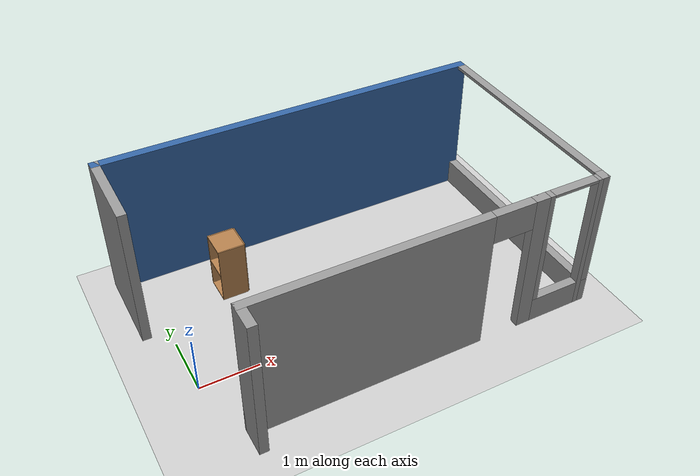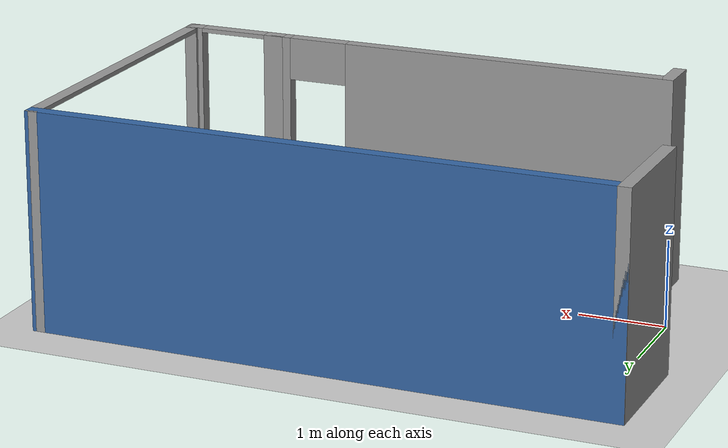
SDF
<sdf version="1.7">
 <world name="default">
  <model name="ground_plane">
   <static>1</static>
   <link name="link">
    <collision name="collision">
     <geometry><plane><normal>0 0 1</normal><size>100 100</size></plane></geometry>
     <surface>
      <contact><collide_bitmask>65535</collide_bitmask></contact>
      <friction><ode><mu>100</mu><mu2>50</mu2></ode></friction>
     </surface>
    </collision>
    <visual name="visual">
     <cast_shadows>0</cast_shadows>
     <geometry><plane><normal>0 0 1</normal><size>100 100</size></plane></geometry>
     <material>
      <script><uri>file://media/materials/scripts/gazebo.material</uri><name>Gazebo/Grey</name></script>
     </material>
    </visual>
   </link>
  </model>
  <model name="Myhouse">
   <link name="Wall_0">
    <pose>2.10158 4.8407 0 0 -0 0</pose>
    <visual name="Wall_0_Visual">
     <pose>0 0 1.25 0 -0 0</pose>
     <geometry><box><size>6.75 0.15 2.5</size></box></geometry>
     <material>
      <script><uri>file://media/materials/scripts/gazebo.material</uri><name>Gazebo/Grey</name></script>
      <ambient>0.203922 0.396078 0.643137 1</ambient>
      <shader type="pixel"/>
     </material>
     <meta><layer>0</layer></meta>
    </visual>
    <collision name="Wall_0_Collision">
     <pose>0 0 1.25 0 -0 0</pose>
     <geometry><box><size>6.75 0.15 2.5</size></box></geometry>
     <surface>
      <friction>
       <ode><mu>1</mu><mu2>1</mu2><fdir1>0 0 0</fdir1><slip1>0</slip1><slip2>0</slip2></ode>
       <torsional>
        <coefficient>1</coefficient>
        <patch_radius>0</patch_radius>
        <surface_radius>0</surface_radius>
        <use_patch_radius>1</use_patch_radius>
        <ode><slip>0</slip></ode>
       </torsional>
      </friction>
      <bounce><restitution_coefficient>0</restitution_coefficient><threshold>1e+06</threshold></bounce>
      <contact>
       <collide_without_contact>0</collide_without_contact>
       <collide_without_contact_bitmask>1</collide_without_contact_bitmask>
       <collide_bitmask>1</collide_bitmask>
       <ode>
        <soft_cfm>0</soft_cfm>
        <soft_erp>0.2</soft_erp>
        <kp>1e+13</kp>
        <kd>1</kd>
        <max_vel>0.01</max_vel>
        <min_depth>0</min_depth>
       </ode>
       <bullet>
        <split_impulse>1</split_impulse>
        <split_impulse_penetration_threshold>-0.01</split_impulse_penetration_threshold>
        <soft_cfm>0</soft_cfm>
        <soft_erp>0.2</soft_erp>
        <kp>1e+13</kp>
        <kd>1</kd>
       </bullet>
      </contact>
     </surface>
    </collision>
   </link>
   <link name="Wall_1">
    <pose>5.39997 2.92495 0 0 0 -1.57164</pose>
    <visual name="Wall_1_Visual_0">
     <pose>-1.94391 0 1.25 0 -0 0</pose>
     <geometry><box><size>0.093734 0.15 2.5</size></box></geometry>
     <material>
      <script><uri>file://media/materials/scripts/gazebo.material</uri><name>Gazebo/Grey</name></script>
      <ambient>1 1 1 1</ambient>
      <shader type="pixel"/>
     </material>
     <meta><layer>0</layer></meta>
    </visual>
    <visual name="Wall_1_Visual_1">
     <pose>0.046867 0 0.225 0 -0 0</pose>
     <geometry><box><size>3.88783 0.15 0.45</size></box></geometry>
     <material>
      <script><uri>file://media/materials/scripts/gazebo.material</uri><name>Gazebo/Grey</name></script>
      <ambient>1 1 1 1</ambient>
      <shader type="pixel"/>
     </material>
     <meta><layer>0</layer></meta>
    </visual>
    <visual name="Wall_1_Visual_2">
     <pose>1.89687 0 1.475 0 -0 0</pose>
     <geometry><box><size>0.187826 0.15 2.05</size></box></geometry>
     <material>
      <script><uri>file://media/materials/scripts/gazebo.material</uri><name>Gazebo/Grey</name></script>
      <ambient>1 1 1 1</ambient>
      <shader type="pixel"/>
     </material>
     <meta><layer>0</layer></meta>
    </visual>
    <visual name="Wall_1_Visual_3">
     <pose>-0.047046 0 2.475 0 -0 0</pose>
     <geometry><box><size>3.7 0.15 0.05</size></box></geometry>
     <material>
      <script><uri>file://media/materials/scripts/gazebo.material</uri><name>Gazebo/Grey</name></script>
      <ambient>1 1 1 1</ambient>
      <shader type="pixel"/>
     </material>
     <meta><layer>0</layer></meta>
    </visual>
    <collision name="Wall_1_Collision_0">
     <pose>-1.94391 0 1.25 0 -0 0</pose>
     <geometry><box><size>0.093734 0.15 2.5</size></box></geometry>
     <surface>
      <friction>
       <ode><mu>1</mu><mu2>1</mu2><fdir1>0 0 0</fdir1><slip1>0</slip1><slip2>0</slip2></ode>
       <torsional>
        <coefficient>1</coefficient>
        <patch_radius>0</patch_radius>
        <surface_radius>0</surface_radius>
        <use_patch_radius>1</use_patch_radius>
        <ode><slip>0</slip></ode>
       </torsional>
      </friction>
      <bounce><restitution_coefficient>0</restitution_coefficient><threshold>1e+06</threshold></bounce>
      <contact>
       <collide_without_contact>0</collide_without_contact>
       <collide_without_contact_bitmask>1</collide_without_contact_bitmask>
       <collide_bitmask>1</collide_bitmask>
       <ode>
        <soft_cfm>0</soft_cfm>
        <soft_erp>0.2</soft_erp>
        <kp>1e+13</kp>
        <kd>1</kd>
        <max_vel>0.01</max_vel>
        <min_depth>0</min_depth>
       </ode>
       <bullet>
        <split_impulse>1</split_impulse>
        <split_impulse_penetration_threshold>-0.01</split_impulse_penetration_threshold>
        <soft_cfm>0</soft_cfm>
        <soft_erp>0.2</soft_erp>
        <kp>1e+13</kp>
        <kd>1</kd>
       </bullet>
      </contact>
     </surface>
    </collision>
    <collision name="Wall_1_Collision_1">
     <pose>0.046867 0 0.225 0 -0 0</pose>
     <geometry><box><size>3.88783 0.15 0.45</size></box></geometry>
     <surface>
      <friction>
       <ode><mu>1</mu><mu2>1</mu2><fdir1>0 0 0</fdir1><slip1>0</slip1><slip2>0</slip2></ode>
       <torsional>
        <coefficient>1</coefficient>
        <patch_radius>0</patch_radius>
        <surface_radius>0</surface_radius>
        <use_patch_radius>1</use_patch_radius>
        <ode><slip>0</slip></ode>
       </torsional>
      </friction>
      <bounce><restitution_coefficient>0</restitution_coefficient><threshold>1e+06</threshold></bounce>
      <contact>
       <collide_without_contact>0</collide_without_contact>
       <collide_without_contact_bitmask>1</collide_without_contact_bitmask>
       <collide_bitmask>1</collide_bitmask>
       <ode>
        <soft_cfm>0</soft_cfm>
        <soft_erp>0.2</soft_erp>
        <kp>1e+13</kp>
        <kd>1</kd>
        <max_vel>0.01</max_vel>
        <min_depth>0</min_depth>
       </ode>
       <bullet>
        <split_impulse>1</split_impulse>
        <split_impulse_penetration_threshold>-0.01</split_impulse_penetration_threshold>
        <soft_cfm>0</soft_cfm>
        <soft_erp>0.2</soft_erp>
        <kp>1e+13</kp>
        <kd>1</kd>
       </bullet>
      </contact>
     </surface>
    </collision>
    <collision name="Wall_1_Collision_2">
     <pose>1.89687 0 1.475 0 -0 0</pose>
     <geometry><box><size>0.187826 0.15 2.05</size></box></geometry>
     <surface>
      <friction>
       <ode><mu>1</mu><mu2>1</mu2><fdir1>0 0 0</fdir1><slip1>0</slip1><slip2>0</slip2></ode>
       <torsional>
        <coefficient>1</coefficient>
        <patch_radius>0</patch_radius>
        <surface_radius>0</surface_radius>
        <use_patch_radius>1</use_patch_radius>
        <ode><slip>0</slip></ode>
       </torsional>
      </friction>
      <bounce><restitution_coefficient>0</restitution_coefficient><threshold>1e+06</threshold></bounce>
      <contact>
       <collide_without_contact>0</collide_without_contact>
       <collide_without_contact_bitmask>1</collide_without_contact_bitmask>
       <collide_bitmask>1</collide_bitmask>
       <ode>
        <soft_cfm>0</soft_cfm>
        <soft_erp>0.2</soft_erp>
        <kp>1e+13</kp>
        <kd>1</kd>
        <max_vel>0.01</max_vel>
        <min_depth>0</min_depth>
       </ode>
       <bullet>
        <split_impulse>1</split_impulse>
        <split_impulse_penetration_threshold>-0.01</split_impulse_penetration_threshold>
        <soft_cfm>0</soft_cfm>
        <soft_erp>0.2</soft_erp>
        <kp>1e+13</kp>
        <kd>1</kd>
       </bullet>
      </contact>
     </surface>
    </collision>
    <collision name="Wall_1_Collision_3">
     <pose>-0.047046 0 2.475 0 -0 0</pose>
     <geometry><box><size>3.7 0.15 0.05</size></box></geometry>
     <surface>
      <friction>
       <ode><mu>1</mu><mu2>1</mu2><fdir1>0 0 0</fdir1><slip1>0</slip1><slip2>0</slip2></ode>
       <torsional>
        <coefficient>1</coefficient>
        <patch_radius>0</patch_radius>
        <surface_radius>0</surface_radius>
        <use_patch_radius>1</use_patch_radius>
        <ode><slip>0</slip></ode>
       </torsional>
      </friction>
      <bounce><restitution_coefficient>0</restitution_coefficient><threshold>1e+06</threshold></bounce>
      <contact>
       <collide_without_contact>0</collide_without_contact>
       <collide_without_contact_bitmask>1</collide_without_contact_bitmask>
       <collide_bitmask>1</collide_bitmask>
       <ode>
        <soft_cfm>0</soft_cfm>
        <soft_erp>0.2</soft_erp>
        <kp>1e+13</kp>
        <kd>1</kd>
        <max_vel>0.01</max_vel>
        <min_depth>0</min_depth>
       </ode>
       <bullet>
        <split_impulse>1</split_impulse>
        <split_impulse_penetration_threshold>-0.01</split_impulse_penetration_threshold>
        <soft_cfm>0</soft_cfm>
        <soft_erp>0.2</soft_erp>
        <kp>1e+13</kp>
        <kd>1</kd>
       </bullet>
      </contact>
     </surface>
    </collision>
   </link>
   <link name="Wall_13">
    <pose>1.92675 1.00921 0 0 -0 3.14159</pose>
    <visual name="Wall_13_Visual_0">
     <pose>-2.32196 0 1.25 0 -0 0</pose>
     <geometry><box><size>0.249291 0.15 2.5</size></box></geometry>
     <material>
      <script><uri>file://media/materials/scripts/gazebo.material</uri><name>Gazebo/Grey</name></script>
      <ambient>1 1 1 1</ambient>
      <shader type="pixel"/>
     </material>
     <meta><layer>0</layer></meta>
    </visual>
    <visual name="Wall_13_Visual_1">
     <pose>0.474646 0 1.25 0 -0 0</pose>
     <geometry><box><size>3.94392 0.15 2.5</size></box></geometry>
     <material>
      <script><uri>file://media/materials/scripts/gazebo.material</uri><name>Gazebo/Grey</name></script>
      <ambient>1 1 1 1</ambient>
      <shader type="pixel"/>
     </material>
     <meta><layer>0</layer></meta>
    </visual>
    <visual name="Wall_13_Visual_2">
     <pose>-1.84732 0 2.25 0 -0 0</pose>
     <geometry><box><size>0.7 0.15 0.5</size></box></geometry>
     <material>
      <script><uri>file://media/materials/scripts/gazebo.material</uri><name>Gazebo/Grey</name></script>
      <ambient>1 1 1 1</ambient>
      <shader type="pixel"/>
     </material>
     <meta><layer>0</layer></meta>
    </visual>
    <collision name="Wall_13_Collision_0">
     <pose>-2.32196 0 1.25 0 -0 0</pose>
     <geometry><box><size>0.249291 0.15 2.5</size></box></geometry>
     <surface>
      <friction>
       <ode><mu>1</mu><mu2>1</mu2><fdir1>0 0 0</fdir1><slip1>0</slip1><slip2>0</slip2></ode>
       <torsional>
        <coefficient>1</coefficient>
        <patch_radius>0</patch_radius>
        <surface_radius>0</surface_radius>
        <use_patch_radius>1</use_patch_radius>
        <ode><slip>0</slip></ode>
       </torsional>
      </friction>
      <bounce><restitution_coefficient>0</restitution_coefficient><threshold>1e+06</threshold></bounce>
      <contact>
       <collide_without_contact>0</collide_without_contact>
       <collide_without_contact_bitmask>1</collide_without_contact_bitmask>
       <collide_bitmask>1</collide_bitmask>
       <ode>
        <soft_cfm>0</soft_cfm>
        <soft_erp>0.2</soft_erp>
        <kp>1e+13</kp>
        <kd>1</kd>
        <max_vel>0.01</max_vel>
        <min_depth>0</min_depth>
       </ode>
       <bullet>
        <split_impulse>1</split_impulse>
        <split_impulse_penetration_threshold>-0.01</split_impulse_penetration_threshold>
        <soft_cfm>0</soft_cfm>
        <soft_erp>0.2</soft_erp>
        <kp>1e+13</kp>
        <kd>1</kd>
       </bullet>
      </contact>
     </surface>
    </collision>
    <collision name="Wall_13_Collision_1">
     <pose>0.474646 0 1.25 0 -0 0</pose>
     <geometry><box><size>3.94392 0.15 2.5</size></box></geometry>
     <surface>
      <friction>
       <ode><mu>1</mu><mu2>1</mu2><fdir1>0 0 0</fdir1><slip1>0</slip1><slip2>0</slip2></ode>
       <torsional>
        <coefficient>1</coefficient>
        <patch_radius>0</patch_radius>
        <surface_radius>0</surface_radius>
        <use_patch_radius>1</use_patch_radius>
        <ode><slip>0</slip></ode>
       </torsional>
      </friction>
      <bounce><restitution_coefficient>0</restitution_coefficient><threshold>1e+06</threshold></bounce>
      <contact>
       <collide_without_contact>0</collide_without_contact>
       <collide_without_contact_bitmask>1</collide_without_contact_bitmask>
       <collide_bitmask>1</collide_bitmask>
       <ode>
        <soft_cfm>0</soft_cfm>
        <soft_erp>0.2</soft_erp>
        <kp>1e+13</kp>
        <kd>1</kd>
        <max_vel>0.01</max_vel>
        <min_depth>0</min_depth>
       </ode>
       <bullet>
        <split_impulse>1</split_impulse>
        <split_impulse_penetration_threshold>-0.01</split_impulse_penetration_threshold>
        <soft_cfm>0</soft_cfm>
        <soft_erp>0.2</soft_erp>
        <kp>1e+13</kp>
        <kd>1</kd>
       </bullet>
      </contact>
     </surface>
    </collision>
    <collision name="Wall_13_Collision_2">
     <pose>-1.84732 0 2.25 0 -0 0</pose>
     <geometry><box><size>0.7 0.15 0.5</size></box></geometry>
     <surface>
      <friction>
       <ode><mu>1</mu><mu2>1</mu2><fdir1>0 0 0</fdir1><slip1>0</slip1><slip2>0</slip2></ode>
       <torsional>
        <coefficient>1</coefficient>
        <patch_radius>0</patch_radius>
        <surface_radius>0</surface_radius>
        <use_patch_radius>1</use_patch_radius>
        <ode><slip>0</slip></ode>
       </torsional>
      </friction>
      <bounce><restitution_coefficient>0</restitution_coefficient><threshold>1e+06</threshold></bounce>
      <contact>
       <collide_without_contact>0</collide_without_contact>
       <collide_without_contact_bitmask>1</collide_without_contact_bitmask>
       <collide_bitmask>1</collide_bitmask>
       <ode>
        <soft_cfm>0</soft_cfm>
        <soft_erp>0.2</soft_erp>
        <kp>1e+13</kp>
        <kd>1</kd>
        <max_vel>0.01</max_vel>
        <min_depth>0</min_depth>
       </ode>
       <bullet>
        <split_impulse>1</split_impulse>
        <split_impulse_penetration_threshold>-0.01</split_impulse_penetration_threshold>
        <soft_cfm>0</soft_cfm>
        <soft_erp>0.2</soft_erp>
        <kp>1e+13</kp>
        <kd>1</kd>
       </bullet>
      </contact>
     </surface>
    </collision>
   </link>
   <link name="Wall_5">
    <pose>4.84836 1.00921 0 0 -0 3.14159</pose>
    <visual name="Wall_5_Visual_0">
     <pose>-0.519773 0 1.25 0 -0 0</pose>
     <geometry><box><size>0.210454 0.15 2.5</size></box></geometry>
     <material>
      <script><uri>file://media/materials/scripts/gazebo.material</uri><name>Gazebo/Grey</name></script>
      <ambient>1 1 1 1</ambient>
      <shader type="pixel"/>
     </material>
     <meta><layer>0</layer></meta>
    </visual>
    <visual name="Wall_5_Visual_1">
     <pose>0.105227 0 0.225 0 -0 0</pose>
     <geometry><box><size>1.03955 0.15 0.45</size></box></geometry>
     <material>
      <script><uri>file://media/materials/scripts/gazebo.material</uri><name>Gazebo/Grey</name></script>
      <ambient>1 1 1 1</ambient>
      <shader type="pixel"/>
     </material>
     <meta><layer>0</layer></meta>
    </visual>
    <visual name="Wall_5_Visual_2">
     <pose>0.505227 0 1.475 0 -0 0</pose>
     <geometry><box><size>0.239546 0.15 2.05</size></box></geometry>
     <material>
      <script><uri>file://media/materials/scripts/gazebo.material</uri><name>Gazebo/Grey</name></script>
      <ambient>1 1 1 1</ambient>
      <shader type="pixel"/>
     </material>
     <meta><layer>0</layer></meta>
    </visual>
    <visual name="Wall_5_Visual_3">
     <pose>-0.014546 0 2.475 0 -0 0</pose>
     <geometry><box><size>0.8 0.15 0.05</size></box></geometry>
     <material>
      <script><uri>file://media/materials/scripts/gazebo.material</uri><name>Gazebo/Grey</name></script>
      <ambient>1 1 1 1</ambient>
      <shader type="pixel"/>
     </material>
     <meta><layer>0</layer></meta>
    </visual>
    <collision name="Wall_5_Collision_0">
     <pose>-0.519773 0 1.25 0 -0 0</pose>
     <geometry><box><size>0.210454 0.15 2.5</size></box></geometry>
     <surface>
      <friction>
       <ode><mu>1</mu><mu2>1</mu2><fdir1>0 0 0</fdir1><slip1>0</slip1><slip2>0</slip2></ode>
       <torsional>
        <coefficient>1</coefficient>
        <patch_radius>0</patch_radius>
        <surface_radius>0</surface_radius>
        <use_patch_radius>1</use_patch_radius>
        <ode><slip>0</slip></ode>
       </torsional>
      </friction>
      <bounce><restitution_coefficient>0</restitution_coefficient><threshold>1e+06</threshold></bounce>
      <contact>
       <collide_without_contact>0</collide_without_contact>
       <collide_without_contact_bitmask>1</collide_without_contact_bitmask>
       <collide_bitmask>1</collide_bitmask>
       <ode>
        <soft_cfm>0</soft_cfm>
        <soft_erp>0.2</soft_erp>
        <kp>1e+13</kp>
        <kd>1</kd>
        <max_vel>0.01</max_vel>
        <min_depth>0</min_depth>
       </ode>
       <bullet>
        <split_impulse>1</split_impulse>
        <split_impulse_penetration_threshold>-0.01</split_impulse_penetration_threshold>
        <soft_cfm>0</soft_cfm>
        <soft_erp>0.2</soft_erp>
        <kp>1e+13</kp>
        <kd>1</kd>
       </bullet>
      </contact>
     </surface>
    </collision>
    <collision name="Wall_5_Collision_2">
     <pose>0.505227 0 1.475 0 -0 0</pose>
     <geometry><box><size>0.239546 0.15 2.05</size></box></geometry>
     <surface>
      <friction>
       <ode><mu>1</mu><mu2>1</mu2><fdir1>0 0 0</fdir1><slip1>0</slip1><slip2>0</slip2></ode>
       <torsional>
        <coefficient>1</coefficient>
        <patch_radius>0</patch_radius>
        <surface_radius>0</surface_radius>
        <use_patch_radius>1</use_patch_radius>
        <ode><slip>0</slip></ode>
       </torsional>
      </friction>
      <bounce><restitution_coefficient>0</restitution_coefficient><threshold>1e+06</threshold></bounce>
      <contact>
       <collide_without_contact>0</collide_without_contact>
       <collide_without_contact_bitmask>1</collide_without_contact_bitmask>
       <collide_bitmask>1</collide_bitmask>
       <ode>
        <soft_cfm>0</soft_cfm>
        <soft_erp>0.2</soft_erp>
        <kp>1e+13</kp>
        <kd>1</kd>
        <max_vel>0.01</max_vel>
        <min_depth>0</min_depth>
       </ode>
       <bullet>
        <split_impulse>1</split_impulse>
        <split_impulse_penetration_threshold>-0.01</split_impulse_penetration_threshold>
        <soft_cfm>0</soft_cfm>
        <soft_erp>0.2</soft_erp>
        <kp>1e+13</kp>
        <kd>1</kd>
       </bullet>
      </contact>
     </surface>
    </collision>
    <collision name="Wall_5_Collision_1">
     <pose>0.105227 0 0.225 0 -0 0</pose>
     <geometry><box><size>1.03955 0.15 0.45</size></box></geometry>
     <surface>
      <friction>
       <ode><mu>1</mu><mu2>1</mu2><fdir1>0 0 0</fdir1><slip1>0</slip1><slip2>0</slip2></ode>
       <torsional>
        <coefficient>1</coefficient>
        <patch_radius>0</patch_radius>
        <surface_radius>0</surface_radius>
        <use_patch_radius>1</use_patch_radius>
        <ode><slip>0</slip></ode>
       </torsional>
      </friction>
      <bounce><restitution_coefficient>0</restitution_coefficient><threshold>1e+06</threshold></bounce>
      <contact>
       <collide_without_contact>0</collide_without_contact>
       <collide_without_contact_bitmask>1</collide_without_contact_bitmask>
       <collide_bitmask>1</collide_bitmask>
       <ode>
        <soft_cfm>0</soft_cfm>
        <soft_erp>0.2</soft_erp>
        <kp>1e+13</kp>
        <kd>1</kd>
        <max_vel>0.01</max_vel>
        <min_depth>0</min_depth>
       </ode>
       <bullet>
        <split_impulse>1</split_impulse>
        <split_impulse_penetration_threshold>-0.01</split_impulse_penetration_threshold>
        <soft_cfm>0</soft_cfm>
        <soft_erp>0.2</soft_erp>
        <kp>1e+13</kp>
        <kd>1</kd>
       </bullet>
      </contact>
     </surface>
    </collision>
    <collision name="Wall_5_Collision_3">
     <pose>-0.014546 0 2.475 0 -0 0</pose>
     <geometry><box><size>0.8 0.15 0.05</size></box></geometry>
     <surface>
      <friction>
       <ode><mu>1</mu><mu2>1</mu2><fdir1>0 0 0</fdir1><slip1>0</slip1><slip2>0</slip2></ode>
       <torsional>
        <coefficient>1</coefficient>
        <patch_radius>0</patch_radius>
        <surface_radius>0</surface_radius>
        <use_patch_radius>1</use_patch_radius>
        <ode><slip>0</slip></ode>
       </torsional>
      </friction>
      <bounce><restitution_coefficient>0</restitution_coefficient><threshold>1e+06</threshold></bounce>
      <contact>
       <collide_without_contact>0</collide_without_contact>
       <collide_without_contact_bitmask>1</collide_without_contact_bitmask>
       <collide_bitmask>1</collide_bitmask>
       <ode>
        <soft_cfm>0</soft_cfm>
        <soft_erp>0.2</soft_erp>
        <kp>1e+13</kp>
        <kd>1</kd>
        <max_vel>0.01</max_vel>
        <min_depth>0</min_depth>
       </ode>
       <bullet>
        <split_impulse>1</split_impulse>
        <split_impulse_penetration_threshold>-0.01</split_impulse_penetration_threshold>
        <soft_cfm>0</soft_cfm>
        <soft_erp>0.2</soft_erp>
        <kp>1e+13</kp>
        <kd>1</kd>
       </bullet>
      </contact>
     </surface>
    </collision>
   </link>
   <link name="Wall_51">
    <pose>-1.20142 4.1752 0 0 -0 1.5708</pose>
    <visual name="Wall_51_Visual">
     <pose>0 0 1.25 0 -0 0</pose>
     <geometry><box><size>1.481 0.15 2.5</size></box></geometry>
     <material>
      <script><uri>file://media/materials/scripts/gazebo.material</uri><name>Gazebo/Grey</name></script>
      <ambient>1 1 1 1</ambient>
      <shader type="pixel"/>
     </material>
     <meta><layer>0</layer></meta>
    </visual>
    <collision name="Wall_51_Collision">
     <pose>0 0 1.25 0 -0 0</pose>
     <geometry><box><size>1.481 0.15 2.5</size></box></geometry>
     <surface>
      <friction>
       <ode><mu>1</mu><mu2>1</mu2><fdir1>0 0 0</fdir1><slip1>0</slip1><slip2>0</slip2></ode>
       <torsional>
        <coefficient>1</coefficient>
        <patch_radius>0</patch_radius>
        <surface_radius>0</surface_radius>
        <use_patch_radius>1</use_patch_radius>
        <ode><slip>0</slip></ode>
       </torsional>
      </friction>
      <bounce><restitution_coefficient>0</restitution_coefficient><threshold>1e+06</threshold></bounce>
      <contact>
       <collide_without_contact>0</collide_without_contact>
       <collide_without_contact_bitmask>1</collide_without_contact_bitmask>
       <collide_bitmask>1</collide_bitmask>
       <ode>
        <soft_cfm>0</soft_cfm>
        <soft_erp>0.2</soft_erp>
        <kp>1e+13</kp>
        <kd>1</kd>
        <max_vel>0.01</max_vel>
        <min_depth>0</min_depth>
       </ode>
       <bullet>
        <split_impulse>1</split_impulse>
        <split_impulse_penetration_threshold>-0.01</split_impulse_penetration_threshold>
        <soft_cfm>0</soft_cfm>
        <soft_erp>0.2</soft_erp>
        <kp>1e+13</kp>
        <kd>1</kd>
       </bullet>
      </contact>
     </surface>
    </collision>
   </link>
   <link name="Wall_53">
    <pose>-0.444857 0.834209 0 0 0 -1.5708</pose>
    <visual name="Wall_53_Visual">
     <pose>0 0 1.25 0 -0 0</pose>
     <geometry><box><size>0.5 0.15 2.5</size></box></geometry>
     <material>
      <script><uri>file://media/materials/scripts/gazebo.material</uri><name>Gazebo/Grey</name></script>
      <ambient>1 1 1 1</ambient>
      <shader type="pixel"/>
     </material>
     <meta><layer>0</layer></meta>
    </visual>
    <collision name="Wall_53_Collision">
     <pose>0 0 1.25 0 -0 0</pose>
     <geometry><box><size>0.5 0.15 2.5</size></box></geometry>
     <surface>
      <friction>
       <ode><mu>1</mu><mu2>1</mu2><fdir1>0 0 0</fdir1><slip1>0</slip1><slip2>0</slip2></ode>
       <torsional>
        <coefficient>1</coefficient>
        <patch_radius>0</patch_radius>
        <surface_radius>0</surface_radius>
        <use_patch_radius>1</use_patch_radius>
        <ode><slip>0</slip></ode>
       </torsional>
      </friction>
      <bounce><restitution_coefficient>0</restitution_coefficient><threshold>1e+06</threshold></bounce>
      <contact>
       <collide_without_contact>0</collide_without_contact>
       <collide_without_contact_bitmask>1</collide_without_contact_bitmask>
       <collide_bitmask>1</collide_bitmask>
       <ode>
        <soft_cfm>0</soft_cfm>
        <soft_erp>0.2</soft_erp>
        <kp>1e+13</kp>
        <kd>1</kd>
        <max_vel>0.01</max_vel>
        <min_depth>0</min_depth>
       </ode>
       <bullet>
        <split_impulse>1</split_impulse>
        <split_impulse_penetration_threshold>-0.01</split_impulse_penetration_threshold>
        <soft_cfm>0</soft_cfm>
        <soft_erp>0.2</soft_erp>
        <kp>1e+13</kp>
        <kd>1</kd>
       </bullet>
      </contact>
     </surface>
    </collision>
   </link>
   <static>1</static>
   <pose>0.84061 -2.10852 0 0 -0 0</pose>
  </model>
  <model name="cabinet_clone">
   <link name="cabinet_bottom_plate">
    <inertial>
     <pose>0 0 -1 0 -0 0</pose>
     <inertia><ixx>2.05</ixx><ixy>0</ixy><ixz>0</ixz><iyy>2.05</iyy><iyz>0</iyz><izz>2.05</izz></inertia>
     <mass>25</mass>
    </inertial>
    <visual name="cabinet_bottom_plate_geom_cabinet_middle_plate_visual">
     <pose>0 0 0.51 0 -0 0</pose>
     <geometry><box><size>0.45 0.45 0.02</size></box></geometry>
     <material>
      <script><uri>file://media/materials/scripts/gazebo.material</uri><name>Gazebo/Wood</name></script>
      <shader type="pixel"/>
     </material>
    </visual>
    <visual name="cabinet_bottom_plate_geom_visual">
     <pose>0 0 0.01 0 -0 0</pose>
     <geometry><box><size>0.45 0.45 0.02</size></box></geometry>
     <material>
      <script><uri>file://media/materials/scripts/gazebo.material</uri><name>Gazebo/Wood</name></script>
      <shader type="pixel"/>
     </material>
    </visual>
    <visual name="cabinet_bottom_plate_geom_cabinet_right_plate_visual">
     <pose>0 -0.235 0.51 0 -0 0</pose>
     <geometry><box><size>0.45 0.02 1.02</size></box></geometry>
     <material>
      <script><uri>file://media/materials/scripts/gazebo.material</uri><name>Gazebo/Wood</name></script>
      <shader type="pixel"/>
     </material>
    </visual>
    <visual name="cabinet_bottom_plate_geom_cabinet_top_plate_visual">
     <pose>0 0 1.01 0 -0 0</pose>
     <geometry><box><size>0.45 0.45 0.02</size></box></geometry>
     <material>
      <script><uri>file://media/materials/scripts/gazebo.material</uri><name>Gazebo/Wood</name></script>
      <shader type="pixel"/>
     </material>
    </visual>
    <visual name="cabinet_bottom_plate_geom_cabinet_left_plate_visual">
     <pose>0 0.235 0.51 0 -0 0</pose>
     <geometry><box><size>0.45 0.02 1.02</size></box></geometry>
     <material>
      <script><uri>file://media/materials/scripts/gazebo.material</uri><name>Gazebo/Wood</name></script>
      <shader type="pixel"/>
     </material>
    </visual>
    <visual name="cabinet_bottom_plate_geom_cabinet_back_plate_visual">
     <pose>0.235 0 0.51 0 -0 0</pose>
     <geometry><box><size>0.02 0.45 1.02</size></box></geometry>
     <material>
      <script><uri>file://media/materials/scripts/gazebo.material</uri><name>Gazebo/Wood</name></script>
      <shader type="pixel"/>
     </material>
    </visual>
    <collision name="cabinet_bottom_plate_geom_cabinet_top_plate">
     <pose>0 0 1.01 0 -0 0</pose>
     <geometry><box><size>0.45 0.45 0.02</size></box></geometry>
     <surface>
      <friction>
       <ode><mu>1</mu><mu2>1</mu2><fdir1>0 0 0</fdir1><slip1>0</slip1><slip2>0</slip2></ode>
       <torsional>
        <coefficient>1</coefficient>
        <patch_radius>0</patch_radius>
        <surface_radius>0</surface_radius>
        <use_patch_radius>1</use_patch_radius>
        <ode><slip>0</slip></ode>
       </torsional>
      </friction>
      <bounce><restitution_coefficient>0</restitution_coefficient><threshold>1e+06</threshold></bounce>
      <contact>
       <collide_without_contact>0</collide_without_contact>
       <collide_without_contact_bitmask>1</collide_without_contact_bitmask>
       <collide_bitmask>1</collide_bitmask>
       <ode>
        <soft_cfm>0</soft_cfm>
        <soft_erp>0.2</soft_erp>
        <kp>1e+13</kp>
        <kd>1</kd>
        <max_vel>0.01</max_vel>
        <min_depth>0</min_depth>
       </ode>
       <bullet>
        <split_impulse>1</split_impulse>
        <split_impulse_penetration_threshold>-0.01</split_impulse_penetration_threshold>
        <soft_cfm>0</soft_cfm>
        <soft_erp>0.2</soft_erp>
        <kp>1e+13</kp>
        <kd>1</kd>
       </bullet>
      </contact>
     </surface>
    </collision>
    <collision name="cabinet_bottom_plate_geom">
     <pose>0 0 0.01 0 -0 0</pose>
     <geometry><box><size>0.45 0.45 0.02</size></box></geometry>
     <surface>
      <friction>
       <ode><mu>1</mu><mu2>1</mu2><fdir1>0 0 0</fdir1><slip1>0</slip1><slip2>0</slip2></ode>
       <torsional>
        <coefficient>1</coefficient>
        <patch_radius>0</patch_radius>
        <surface_radius>0</surface_radius>
        <use_patch_radius>1</use_patch_radius>
        <ode><slip>0</slip></ode>
       </torsional>
      </friction>
      <bounce><restitution_coefficient>0</restitution_coefficient><threshold>1e+06</threshold></bounce>
      <contact>
       <collide_without_contact>0</collide_without_contact>
       <collide_without_contact_bitmask>1</collide_without_contact_bitmask>
       <collide_bitmask>1</collide_bitmask>
       <ode>
        <soft_cfm>0</soft_cfm>
        <soft_erp>0.2</soft_erp>
        <kp>1e+13</kp>
        <kd>1</kd>
        <max_vel>0.01</max_vel>
        <min_depth>0</min_depth>
       </ode>
       <bullet>
        <split_impulse>1</split_impulse>
        <split_impulse_penetration_threshold>-0.01</split_impulse_penetration_threshold>
        <soft_cfm>0</soft_cfm>
        <soft_erp>0.2</soft_erp>
        <kp>1e+13</kp>
        <kd>1</kd>
       </bullet>
      </contact>
     </surface>
    </collision>
    <collision name="cabinet_bottom_plate_geom_cabinet_middle_plate">
     <pose>0 0 0.51 0 -0 0</pose>
     <geometry><box><size>0.45 0.45 0.02</size></box></geometry>
     <surface>
      <friction>
       <ode><mu>1</mu><mu2>1</mu2><fdir1>0 0 0</fdir1><slip1>0</slip1><slip2>0</slip2></ode>
       <torsional>
        <coefficient>1</coefficient>
        <patch_radius>0</patch_radius>
        <surface_radius>0</surface_radius>
        <use_patch_radius>1</use_patch_radius>
        <ode><slip>0</slip></ode>
       </torsional>
      </friction>
      <bounce><restitution_coefficient>0</restitution_coefficient><threshold>1e+06</threshold></bounce>
      <contact>
       <collide_without_contact>0</collide_without_contact>
       <collide_without_contact_bitmask>1</collide_without_contact_bitmask>
       <collide_bitmask>1</collide_bitmask>
       <ode>
        <soft_cfm>0</soft_cfm>
        <soft_erp>0.2</soft_erp>
        <kp>1e+13</kp>
        <kd>1</kd>
        <max_vel>0.01</max_vel>
        <min_depth>0</min_depth>
       </ode>
       <bullet>
        <split_impulse>1</split_impulse>
        <split_impulse_penetration_threshold>-0.01</split_impulse_penetration_threshold>
        <soft_cfm>0</soft_cfm>
        <soft_erp>0.2</soft_erp>
        <kp>1e+13</kp>
        <kd>1</kd>
       </bullet>
      </contact>
     </surface>
    </collision>
    <collision name="cabinet_bottom_plate_geom_cabinet_right_plate">
     <pose>0 -0.235 0.51 0 -0 0</pose>
     <geometry><box><size>0.45 0.02 1.02</size></box></geometry>
     <surface>
      <friction>
       <ode><mu>1</mu><mu2>1</mu2><fdir1>0 0 0</fdir1><slip1>0</slip1><slip2>0</slip2></ode>
       <torsional>
        <coefficient>1</coefficient>
        <patch_radius>0</patch_radius>
        <surface_radius>0</surface_radius>
        <use_patch_radius>1</use_patch_radius>
        <ode><slip>0</slip></ode>
       </torsional>
      </friction>
      <bounce><restitution_coefficient>0</restitution_coefficient><threshold>1e+06</threshold></bounce>
      <contact>
       <collide_without_contact>0</collide_without_contact>
       <collide_without_contact_bitmask>1</collide_without_contact_bitmask>
       <collide_bitmask>1</collide_bitmask>
       <ode>
        <soft_cfm>0</soft_cfm>
        <soft_erp>0.2</soft_erp>
        <kp>1e+13</kp>
        <kd>1</kd>
        <max_vel>0.01</max_vel>
        <min_depth>0</min_depth>
       </ode>
       <bullet>
        <split_impulse>1</split_impulse>
        <split_impulse_penetration_threshold>-0.01</split_impulse_penetration_threshold>
        <soft_cfm>0</soft_cfm>
        <soft_erp>0.2</soft_erp>
        <kp>1e+13</kp>
        <kd>1</kd>
       </bullet>
      </contact>
     </surface>
    </collision>
    <collision name="cabinet_bottom_plate_geom_cabinet_left_plate">
     <pose>0 0.235 0.51 0 -0 0</pose>
     <geometry><box><size>0.45 0.02 1.02</size></box></geometry>
     <surface>
      <friction>
       <ode><mu>1</mu><mu2>1</mu2><fdir1>0 0 0</fdir1><slip1>0</slip1><slip2>0</slip2></ode>
       <torsional>
        <coefficient>1</coefficient>
        <patch_radius>0</patch_radius>
        <surface_radius>0</surface_radius>
        <use_patch_radius>1</use_patch_radius>
        <ode><slip>0</slip></ode>
       </torsional>
      </friction>
      <bounce><restitution_coefficient>0</restitution_coefficient><threshold>1e+06</threshold></bounce>
      <contact>
       <collide_without_contact>0</collide_without_contact>
       <collide_without_contact_bitmask>1</collide_without_contact_bitmask>
       <collide_bitmask>1</collide_bitmask>
       <ode>
        <soft_cfm>0</soft_cfm>
        <soft_erp>0.2</soft_erp>
        <kp>1e+13</kp>
        <kd>1</kd>
        <max_vel>0.01</max_vel>
        <min_depth>0</min_depth>
       </ode>
       <bullet>
        <split_impulse>1</split_impulse>
        <split_impulse_penetration_threshold>-0.01</split_impulse_penetration_threshold>
        <soft_cfm>0</soft_cfm>
        <soft_erp>0.2</soft_erp>
        <kp>1e+13</kp>
        <kd>1</kd>
       </bullet>
      </contact>
     </surface>
    </collision>
    <collision name="cabinet_bottom_plate_geom_cabinet_back_plate">
     <pose>0.235 0 0.51 0 -0 0</pose>
     <geometry><box><size>0.02 0.45 1.02</size></box></geometry>
     <surface>
      <friction>
       <ode><mu>1</mu><mu2>1</mu2><fdir1>0 0 0</fdir1><slip1>0</slip1><slip2>0</slip2></ode>
       <torsional>
        <coefficient>1</coefficient>
        <patch_radius>0</patch_radius>
        <surface_radius>0</surface_radius>
        <use_patch_radius>1</use_patch_radius>
        <ode><slip>0</slip></ode>
       </torsional>
      </friction>
      <bounce><restitution_coefficient>0</restitution_coefficient><threshold>1e+06</threshold></bounce>
      <contact>
       <collide_without_contact>0</collide_without_contact>
       <collide_without_contact_bitmask>1</collide_without_contact_bitmask>
       <collide_bitmask>1</collide_bitmask>
       <ode>
        <soft_cfm>0</soft_cfm>
        <soft_erp>0.2</soft_erp>
        <kp>1e+13</kp>
        <kd>1</kd>
        <max_vel>0.01</max_vel>
        <min_depth>0</min_depth>
       </ode>
       <bullet>
        <split_impulse>1</split_impulse>
        <split_impulse_penetration_threshold>-0.01</split_impulse_penetration_threshold>
        <soft_cfm>0</soft_cfm>
        <soft_erp>0.2</soft_erp>
        <kp>1e+13</kp>
        <kd>1</kd>
       </bullet>
      </contact>
     </surface>
    </collision>
   </link>
   <static>1</static>
   <pose>1.26836 1.83757 0 0 -0 0</pose>
  </model>
  <model name="cabinet_clone_0">
   <link name="cabinet_bottom_plate">
    <inertial>
     <pose>0 0 -1 0 -0 0</pose>
     <inertia><ixx>2.05</ixx><ixy>0</ixy><ixz>0</ixz><iyy>2.05</iyy><iyz>0</iyz><izz>2.05</izz></inertia>
     <mass>25</mass>
    </inertial>
    <visual name="cabinet_bottom_plate_geom_cabinet_middle_plate_visual">
     <pose>0 0 0.51 0 -0 0</pose>
     <geometry><box><size>0.45 0.45 0.02</size></box></geometry>
     <material>
      <script><uri>file://media/materials/scripts/gazebo.material</uri><name>Gazebo/Wood</name></script>
      <shader type="pixel"/>
     </material>
    </visual>
    <visual name="cabinet_bottom_plate_geom_visual">
     <pose>0 0 0.01 0 -0 0</pose>
     <geometry><box><size>0.45 0.45 0.02</size></box></geometry>
     <material>
      <script><uri>file://media/materials/scripts/gazebo.material</uri><name>Gazebo/Wood</name></script>
      <shader type="pixel"/>
     </material>
    </visual>
    <visual name="cabinet_bottom_plate_geom_cabinet_right_plate_visual">
     <pose>0 -0.235 0.51 0 -0 0</pose>
     <geometry><box><size>0.45 0.02 1.02</size></box></geometry>
     <material>
      <script><uri>file://media/materials/scripts/gazebo.material</uri><name>Gazebo/Wood</name></script>
      <shader type="pixel"/>
     </material>
    </visual>
    <visual name="cabinet_bottom_plate_geom_cabinet_top_plate_visual">
     <pose>0 0 1.01 0 -0 0</pose>
     <geometry><box><size>0.45 0.45 0.02</size></box></geometry>
     <material>
      <script><uri>file://media/materials/scripts/gazebo.material</uri><name>Gazebo/Wood</name></script>
      <shader type="pixel"/>
     </material>
    </visual>
    <visual name="cabinet_bottom_plate_geom_cabinet_left_plate_visual">
     <pose>0 0.235 0.51 0 -0 0</pose>
     <geometry><box><size>0.45 0.02 1.02</size></box></geometry>
     <material>
      <script><uri>file://media/materials/scripts/gazebo.material</uri><name>Gazebo/Wood</name></script>
      <shader type="pixel"/>
     </material>
    </visual>
    <visual name="cabinet_bottom_plate_geom_cabinet_back_plate_visual">
     <pose>0.235 0 0.51 0 -0 0</pose>
     <geometry><box><size>0.02 0.45 1.02</size></box></geometry>
     <material>
      <script><uri>file://media/materials/scripts/gazebo.material</uri><name>Gazebo/Wood</name></script>
      <shader type="pixel"/>
     </material>
    </visual>
    <collision name="cabinet_bottom_plate_geom_cabinet_top_plate">
     <pose>0 0 1.01 0 -0 0</pose>
     <geometry><box><size>0.45 0.45 0.02</size></box></geometry>
     <surface>
      <friction>
       <ode><mu>1</mu><mu2>1</mu2><fdir1>0 0 0</fdir1><slip1>0</slip1><slip2>0</slip2></ode>
       <torsional>
        <coefficient>1</coefficient>
        <patch_radius>0</patch_radius>
        <surface_radius>0</surface_radius>
        <use_patch_radius>1</use_patch_radius>
        <ode><slip>0</slip></ode>
       </torsional>
      </friction>
      <bounce><restitution_coefficient>0</restitution_coefficient><threshold>1e+06</threshold></bounce>
      <contact>
       <collide_without_contact>0</collide_without_contact>
       <collide_without_contact_bitmask>1</collide_without_contact_bitmask>
       <collide_bitmask>1</collide_bitmask>
       <ode>
        <soft_cfm>0</soft_cfm>
        <soft_erp>0.2</soft_erp>
        <kp>1e+13</kp>
        <kd>1</kd>
        <max_vel>0.01</max_vel>
        <min_depth>0</min_depth>
       </ode>
       <bullet>
        <split_impulse>1</split_impulse>
        <split_impulse_penetration_threshold>-0.01</split_impulse_penetration_threshold>
        <soft_cfm>0</soft_cfm>
        <soft_erp>0.2</soft_erp>
        <kp>1e+13</kp>
        <kd>1</kd>
       </bullet>
      </contact>
     </surface>
    </collision>
    <collision name="cabinet_bottom_plate_geom">
     <pose>0 0 0.01 0 -0 0</pose>
     <geometry><box><size>0.45 0.45 0.02</size></box></geometry>
     <surface>
      <friction>
       <ode><mu>1</mu><mu2>1</mu2><fdir1>0 0 0</fdir1><slip1>0</slip1><slip2>0</slip2></ode>
       <torsional>
        <coefficient>1</coefficient>
        <patch_radius>0</patch_radius>
        <surface_radius>0</surface_radius>
        <use_patch_radius>1</use_patch_radius>
        <ode><slip>0</slip></ode>
       </torsional>
      </friction>
      <bounce><restitution_coefficient>0</restitution_coefficient><threshold>1e+06</threshold></bounce>
      <contact>
       <collide_without_contact>0</collide_without_contact>
       <collide_without_contact_bitmask>1</collide_without_contact_bitmask>
       <collide_bitmask>1</collide_bitmask>
       <ode>
        <soft_cfm>0</soft_cfm>
        <soft_erp>0.2</soft_erp>
        <kp>1e+13</kp>
        <kd>1</kd>
        <max_vel>0.01</max_vel>
        <min_depth>0</min_depth>
       </ode>
       <bullet>
        <split_impulse>1</split_impulse>
        <split_impulse_penetration_threshold>-0.01</split_impulse_penetration_threshold>
        <soft_cfm>0</soft_cfm>
        <soft_erp>0.2</soft_erp>
        <kp>1e+13</kp>
        <kd>1</kd>
       </bullet>
      </contact>
     </surface>
    </collision>
    <collision name="cabinet_bottom_plate_geom_cabinet_middle_plate">
     <pose>0 0 0.51 0 -0 0</pose>
     <geometry><box><size>0.45 0.45 0.02</size></box></geometry>
     <surface>
      <friction>
       <ode><mu>1</mu><mu2>1</mu2><fdir1>0 0 0</fdir1><slip1>0</slip1><slip2>0</slip2></ode>
       <torsional>
        <coefficient>1</coefficient>
        <patch_radius>0</patch_radius>
        <surface_radius>0</surface_radius>
        <use_patch_radius>1</use_patch_radius>
        <ode><slip>0</slip></ode>
       </torsional>
      </friction>
      <bounce><restitution_coefficient>0</restitution_coefficient><threshold>1e+06</threshold></bounce>
      <contact>
       <collide_without_contact>0</collide_without_contact>
       <collide_without_contact_bitmask>1</collide_without_contact_bitmask>
       <collide_bitmask>1</collide_bitmask>
       <ode>
        <soft_cfm>0</soft_cfm>
        <soft_erp>0.2</soft_erp>
        <kp>1e+13</kp>
        <kd>1</kd>
        <max_vel>0.01</max_vel>
        <min_depth>0</min_depth>
       </ode>
       <bullet>
        <split_impulse>1</split_impulse>
        <split_impulse_penetration_threshold>-0.01</split_impulse_penetration_threshold>
        <soft_cfm>0</soft_cfm>
        <soft_erp>0.2</soft_erp>
        <kp>1e+13</kp>
        <kd>1</kd>
       </bullet>
      </contact>
     </surface>
    </collision>
    <collision name="cabinet_bottom_plate_geom_cabinet_right_plate">
     <pose>0 -0.235 0.51 0 -0 0</pose>
     <geometry><box><size>0.45 0.02 1.02</size></box></geometry>
     <surface>
      <friction>
       <ode><mu>1</mu><mu2>1</mu2><fdir1>0 0 0</fdir1><slip1>0</slip1><slip2>0</slip2></ode>
       <torsional>
        <coefficient>1</coefficient>
        <patch_radius>0</patch_radius>
        <surface_radius>0</surface_radius>
        <use_patch_radius>1</use_patch_radius>
        <ode><slip>0</slip></ode>
       </torsional>
      </friction>
      <bounce><restitution_coefficient>0</restitution_coefficient><threshold>1e+06</threshold></bounce>
      <contact>
       <collide_without_contact>0</collide_without_contact>
       <collide_without_contact_bitmask>1</collide_without_contact_bitmask>
       <collide_bitmask>1</collide_bitmask>
       <ode>
        <soft_cfm>0</soft_cfm>
        <soft_erp>0.2</soft_erp>
        <kp>1e+13</kp>
        <kd>1</kd>
        <max_vel>0.01</max_vel>
        <min_depth>0</min_depth>
       </ode>
       <bullet>
        <split_impulse>1</split_impulse>
        <split_impulse_penetration_threshold>-0.01</split_impulse_penetration_threshold>
        <soft_cfm>0</soft_cfm>
        <soft_erp>0.2</soft_erp>
        <kp>1e+13</kp>
        <kd>1</kd>
       </bullet>
      </contact>
     </surface>
    </collision>
    <collision name="cabinet_bottom_plate_geom_cabinet_left_plate">
     <pose>0 0.235 0.51 0 -0 0</pose>
     <geometry><box><size>0.45 0.02 1.02</size></box></geometry>
     <surface>
      <friction>
       <ode><mu>1</mu><mu2>1</mu2><fdir1>0 0 0</fdir1><slip1>0</slip1><slip2>0</slip2></ode>
       <torsional>
        <coefficient>1</coefficient>
        <patch_radius>0</patch_radius>
        <surface_radius>0</surface_radius>
        <use_patch_radius>1</use_patch_radius>
        <ode><slip>0</slip></ode>
       </torsional>
      </friction>
      <bounce><restitution_coefficient>0</restitution_coefficient><threshold>1e+06</threshold></bounce>
      <contact>
       <collide_without_contact>0</collide_without_contact>
       <collide_without_contact_bitmask>1</collide_without_contact_bitmask>
       <collide_bitmask>1</collide_bitmask>
       <ode>
        <soft_cfm>0</soft_cfm>
        <soft_erp>0.2</soft_erp>
        <kp>1e+13</kp>
        <kd>1</kd>
        <max_vel>0.01</max_vel>
        <min_depth>0</min_depth>
       </ode>
       <bullet>
        <split_impulse>1</split_impulse>
        <split_impulse_penetration_threshold>-0.01</split_impulse_penetration_threshold>
        <soft_cfm>0</soft_cfm>
        <soft_erp>0.2</soft_erp>
        <kp>1e+13</kp>
        <kd>1</kd>
       </bullet>
      </contact>
     </surface>
    </collision>
    <collision name="cabinet_bottom_plate_geom_cabinet_back_plate">
     <pose>0.235 0 0.51 0 -0 0</pose>
     <geometry><box><size>0.02 0.45 1.02</size></box></geometry>
     <surface>
      <friction>
       <ode><mu>1</mu><mu2>1</mu2><fdir1>0 0 0</fdir1><slip1>0</slip1><slip2>0</slip2></ode>
       <torsional>
        <coefficient>1</coefficient>
        <patch_radius>0</patch_radius>
        <surface_radius>0</surface_radius>
        <use_patch_radius>1</use_patch_radius>
        <ode><slip>0</slip></ode>
       </torsional>
      </friction>
      <bounce><restitution_coefficient>0</restitution_coefficient><threshold>1e+06</threshold></bounce>
      <contact>
       <collide_without_contact>0</collide_without_contact>
       <collide_without_contact_bitmask>1</collide_without_contact_bitmask>
       <collide_bitmask>1</collide_bitmask>
       <ode>
        <soft_cfm>0</soft_cfm>
        <soft_erp>0.2</soft_erp>
        <kp>1e+13</kp>
        <kd>1</kd>
        <max_vel>0.01</max_vel>
        <min_depth>0</min_depth>
       </ode>
       <bullet>
        <split_impulse>1</split_impulse>
        <split_impulse_penetration_threshold>-0.01</split_impulse_penetration_threshold>
        <soft_cfm>0</soft_cfm>
        <soft_erp>0.2</soft_erp>
        <kp>1e+13</kp>
        <kd>1</kd>
       </bullet>
      </contact>
     </surface>
    </collision>
   </link>
   <static>1</static>
   <pose>2.3265 -0.021644 0 0 -0 0</pose>
  </model>
 </world>
</sdf>
